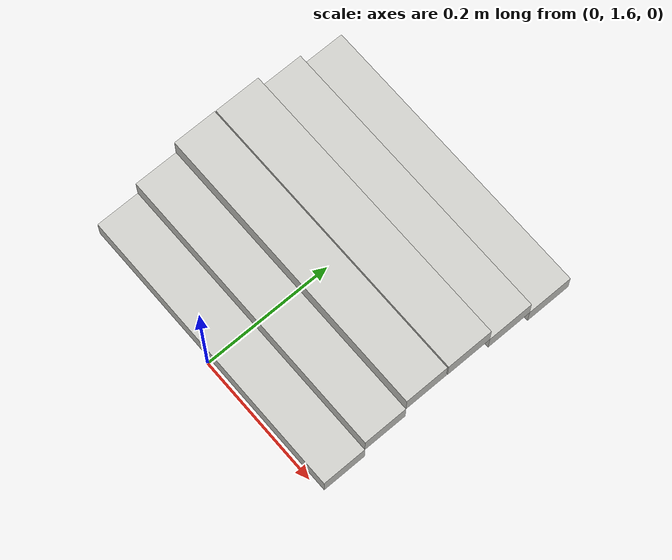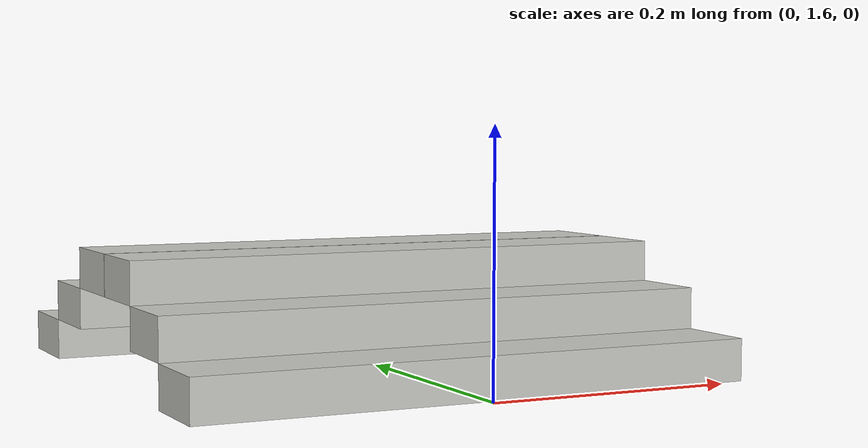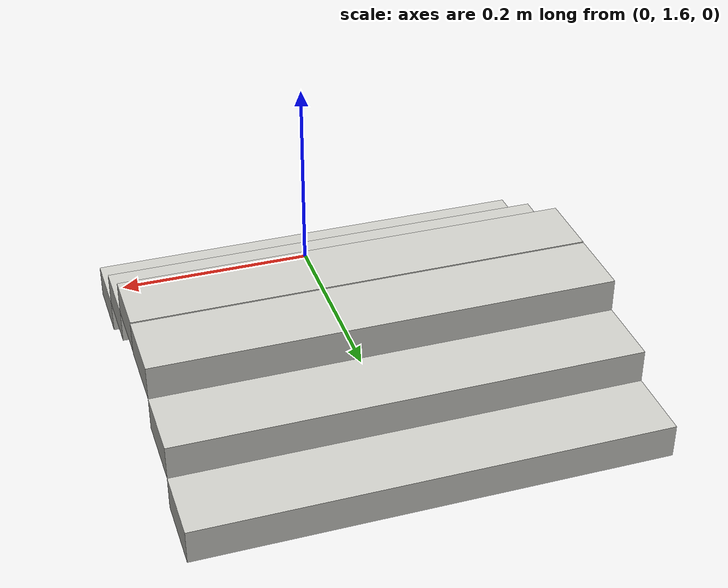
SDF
<?xml version='1.0'?>
<sdf version='1.6'>
  <model name='vc_stairs'>
    <pose frame=''>-0.002279 1.81235 0 0 -0 0</pose>
    <link name='Stairs_1'>
      <visual name='Stairs_1_Visual_0'>
        <pose frame=''>0.000167 0.171477 0.016667 0 -0 0</pose>
        <geometry>
          <box>
            <size>0.45 0.070667 0.033333</size>
          </box>
        </geometry>
        <material>
          <script>
            <uri>file://media/materials/scripts/gazebo.material</uri>
            <name>Gazebo/CeilingTiled</name>
          </script>
          <ambient>0.996078 0.47451 0.0196078 1</ambient>
        </material>
        <meta>
          <layer>0</layer>
        </meta>
      </visual>
      <collision name='Stairs_1_Collision_0'>
        <geometry>
          <box>
            <size>0.45 0.070667 0.033333</size>
          </box>
        </geometry>
        <surface>
            <friction>
              <ode>
                <mu>300</mu>
                <mu2>300</mu2>
              </ode>
            </friction>
        </surface>
        <pose frame=''>0.000167 0.171477 0.016667 0 -0 0</pose>
      </collision>
      <visual name='Stairs_1_Visual_1'>
        <pose frame=''>0.000167 0.10081 0.05 0 -0 0</pose>
        <geometry>
          <box>
            <size>0.45 0.070667 0.033333</size>
          </box>
        </geometry>
        <material>
          <script>
            <uri>file://media/materials/scripts/gazebo.material</uri>
            <name>Gazebo/CeilingTiled</name>
          </script>
          <ambient>0.996078 0.47451 0.0196078 1</ambient>
        </material>
        <meta>
          <layer>0</layer>
        </meta>
      </visual>
      <collision name='Stairs_1_Collision_1'>
        <geometry>
          <box>
            <size>0.45 0.070667 0.033333</size>
          </box>
        </geometry>
        <surface>
            <friction>
              <ode>
                <mu>300</mu>
                <mu2>300</mu2>
              </ode>
            </friction>
        </surface>
        <pose frame=''>0.000167 0.10081 0.05 0 -0 0</pose>
      </collision>
      <visual name='Stairs_1_Visual_2'>
        <pose frame=''>0.000167 0.030144 0.083333 0 -0 0</pose>
        <geometry>
          <box>
            <size>0.45 0.070667 0.033333</size>
          </box>
        </geometry>
        <material>
          <script>
            <uri>file://media/materials/scripts/gazebo.material</uri>
            <name>Gazebo/CeilingTiled</name>
          </script>
          <ambient>0.996078 0.47451 0.0196078 1</ambient>
        </material>
        <meta>
          <layer>0</layer>
        </meta>
      </visual>
      <collision name='Stairs_1_Collision_2'>
        <geometry>
          <box>
            <size>0.45 0.070667 0.033333</size>
          </box>
        </geometry>
        <surface>
            <friction>
              <ode>
                <mu>300</mu>
                <mu2>300</mu2>
              </ode>
            </friction>
        </surface>
        <pose frame=''>0.000167 0.030144 0.083333 0 -0 0</pose>
      </collision>
    </link>
    <link name='Stairs_3'>
      <visual name='Stairs_3_Visual_0'>
        <pose frame=''>-0.000167 -0.173477 0.016667 0 -0 -3.14159</pose>
        <geometry>
          <box>
            <size>0.45 0.066667 0.033333</size>
          </box>
        </geometry>
        <material>
          <script>
            <uri>file://media/materials/scripts/gazebo.material</uri>
            <name>Gazebo/CeilingTiled</name>
          </script>
          <ambient>0.996078 0.47451 0.0196078 1</ambient>
        </material>
        <meta>
          <layer>0</layer>
        </meta>
      </visual>
      <collision name='Stairs_3_Collision_0'>
        <geometry>
          <box>
            <size>0.45 0.066667 0.033333</size>
          </box>
        </geometry>
        <surface>
            <friction>
              <ode>
                <mu>300</mu>
                <mu2>300</mu2>
              </ode>
            </friction>
        </surface>
        <pose frame=''>-0.000167 -0.173477 0.016667 0 -0 -3.14159</pose>
      </collision>
      <visual name='Stairs_3_Visual_1'>
        <pose frame=''>-0.000167 -0.10681 0.05 0 -0 -3.14159</pose>
        <geometry>
          <box>
            <size>0.45 0.066667 0.033333</size>
          </box>
        </geometry>
        <material>
          <script>
            <uri>file://media/materials/scripts/gazebo.material</uri>
            <name>Gazebo/CeilingTiled</name>
          </script>
          <ambient>0.996078 0.47451 0.0196078 1</ambient>
        </material>
        <meta>
          <layer>0</layer>
        </meta>
      </visual>
      <collision name='Stairs_3_Collision_1'>
        <geometry>
          <box>
            <size>0.45 0.066667 0.033333</size>
          </box>
        </geometry>
        <surface>
            <friction>
              <ode>
                <mu>300</mu>
                <mu2>300</mu2>
              </ode>
            </friction>
        </surface>
        <pose frame=''>-0.000167 -0.10681 0.05 0 -0 -3.14159</pose>
      </collision>
      <visual name='Stairs_3_Visual_2'>
        <pose frame=''>-0.000167 -0.040144 0.083333 0 -0 -3.14159</pose>
        <geometry>
          <box>
            <size>0.45 0.066667 0.033333</size>
          </box>
        </geometry>
        <material>
          <script>
            <uri>file://media/materials/scripts/gazebo.material</uri>
            <name>Gazebo/CeilingTiled</name>
          </script>
          <ambient>0.996078 0.47451 0.0196078 1</ambient>
        </material>
        <meta>
          <layer>0</layer>
        </meta>
      </visual>
      <collision name='Stairs_3_Collision_2'>
        <geometry>
          <box>
            <size>0.45 0.066667 0.033333</size>
          </box>
        </geometry>
        <surface>
            <friction>
              <ode>
                <mu>300</mu>
                <mu2>300</mu2>
              </ode>
            </friction>
        </surface>
        <pose frame=''>-0.000167 -0.040144 0.083333 0 -0 -3.14159</pose>
      </collision>
    </link>
    <static>1</static>
  </model>
</sdf>
